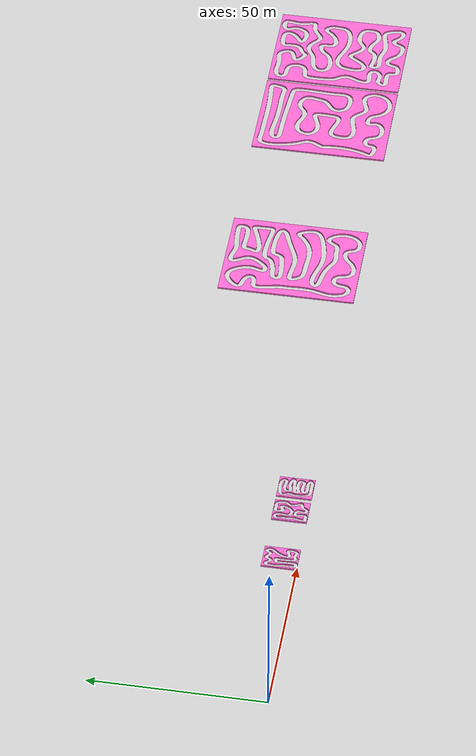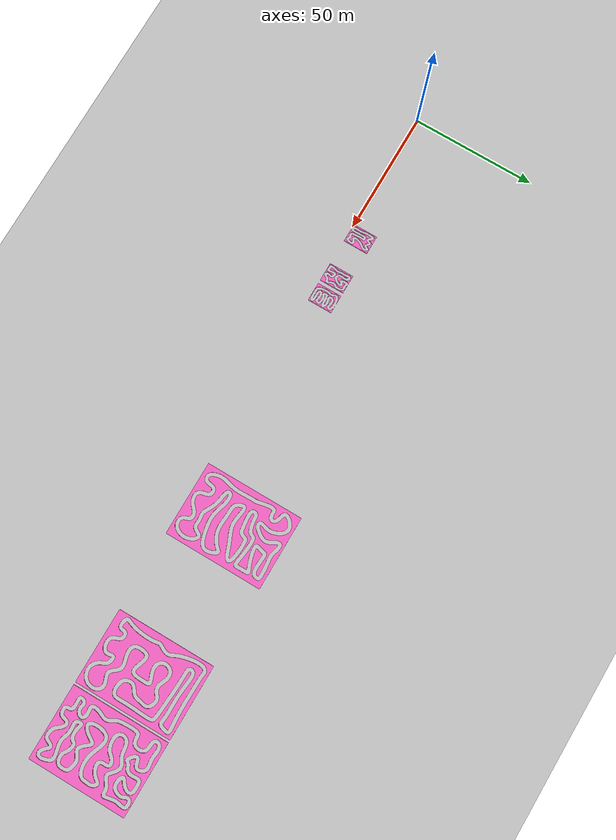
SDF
<sdf version="1.6">
 <world name="empty">
  <physics name="1ms" type="ignored">
   <max_step_size>0.001</max_step_size>
   <real_time_factor>10.0</real_time_factor>
  </physics>
  <plugin filename="gz-sim-physics-system" name="gz::sim::systems::Physics"/>
  <plugin filename="gz-sim-sensors-system" name="gz::sim::systems::Sensors">
   <render_engine>ogre2</render_engine>
  </plugin>
  <plugin filename="gz-sim-user-commands-system" name="gz::sim::systems::UserCommands"/>
  <plugin filename="gz-sim-scene-broadcaster-system" name="gz::sim::systems::SceneBroadcaster"/>
  <light type="directional" name="sun">
   <pose>0 0 10 0 0 0</pose>
   <diffuse>1 1 1 1</diffuse>
   <specular>0.5 0.5 0.5 1</specular>
   <attenuation>
    <range>1000</range>
    <constant>0.9</constant>
    <linear>0.01</linear>
    <quadratic>0.001</quadratic>
   </attenuation>
   <direction>-0.5 0.1 -0.9</direction>
  </light>
  <model name="narrow_ground_plane">
   <pose>130 0 0 0 0 0</pose>
   <static>true</static>
   <link name="link">
    <collision name="collision">
     <geometry><plane><normal>0 0 1</normal><size>140 100</size></plane></geometry>
     <surface>
      <friction>
       <ode><mu>50</mu></ode>
       <bullet><friction>1</friction><rolling_friction>0.1</rolling_friction></bullet>
      </friction>
     </surface>
    </collision>
    <visual name="visual">
     <geometry><plane><normal>0 0 1</normal><size>300 100</size></plane></geometry>
     <material>
      <ambient>0.8 0.8 0.8 1</ambient>
      <diffuse>0.8 0.8 0.8 1</diffuse>
      <specular>0.8 0.8 0.8 1</specular>
     </material>
    </visual>
   </link>
  </model>
  <model name="track_02_1m">
   <pose>49 0 0 0 0 0</pose>
   <static>true</static>
   <link name="track">
    <visual name="track_vis">
     <geometry><mesh><uri>../meshes/track_02_1m.stl</uri><scale>0.001 0.001 0.001</scale></mesh></geometry>
     <material>
      <ambient>1.0 0.4 0.8 1</ambient>
      <diffuse>1.0 0.4 0.8 1</diffuse>
      <specular>0.5 0.2 0.4 1</specular>
     </material>
    </visual>
    <collision name="track_col">
     <geometry><mesh><uri>../meshes/track_02_1m.stl</uri><scale>0.001 0.001 0.001</scale></mesh></geometry>
    </collision>
   </link>
  </model>
  <model name="track_04_1m">
   <pose>67 0 0 0 0 0</pose>
   <static>true</static>
   <link name="track">
    <visual name="track_vis">
     <geometry><mesh><uri>../meshes/track_04_1m.stl</uri><scale>0.001 0.001 0.001</scale></mesh></geometry>
     <material>
      <ambient>1.0 0.4 0.8 1</ambient>
      <diffuse>1.0 0.4 0.8 1</diffuse>
      <specular>0.5 0.2 0.4 1</specular>
     </material>
    </visual>
    <collision name="track_col">
     <geometry><mesh><uri>../meshes/track_04_1m.stl</uri><scale>0.001 0.001 0.001</scale></mesh></geometry>
    </collision>
   </link>
  </model>
  <model name="track_05_1m">
   <pose>76 0 0 0 0 0</pose>
   <static>true</static>
   <link name="track">
    <visual name="track_vis">
     <geometry><mesh><uri>../meshes/track_05_1m.stl</uri><scale>0.001 0.001 0.001</scale></mesh></geometry>
     <material>
      <ambient>1.0 0.4 0.8 1</ambient>
      <diffuse>1.0 0.4 0.8 1</diffuse>
      <specular>0.5 0.2 0.4 1</specular>
     </material>
    </visual>
    <collision name="track_col">
     <geometry><mesh><uri>../meshes/track_05_1m.stl</uri><scale>0.001 0.001 0.001</scale></mesh></geometry>
    </collision>
   </link>
  </model>
  <model name="narrow_track_03">
   <pose>156 0 0 0 0 0</pose>
   <static>true</static>
   <link name="track">
    <visual name="track_vis">
     <geometry><mesh><uri>../meshes/narrow_track_03.stl</uri><scale>0.001 0.001 0.001</scale></mesh></geometry>
     <material>
      <ambient>1.0 0.4 0.8 1</ambient>
      <diffuse>1.0 0.4 0.8 1</diffuse>
      <specular>0.5 0.2 0.4 1</specular>
     </material>
    </visual>
    <collision name="track_col">
     <geometry><mesh><uri>../meshes/narrow_track_03.stl</uri><scale>0.001 0.001 0.001</scale></mesh></geometry>
    </collision>
   </link>
  </model>
  <model name="narrow_track_05">
   <pose>218 0 0 0 0 0</pose>
   <static>true</static>
   <link name="track">
    <visual name="track_vis">
     <geometry><mesh><uri>../meshes/narrow_track_05.stl</uri><scale>0.001 0.001 0.001</scale></mesh></geometry>
     <material>
      <ambient>1.0 0.4 0.8 1</ambient>
      <diffuse>1.0 0.4 0.8 1</diffuse>
      <specular>0.5 0.2 0.4 1</specular>
     </material>
    </visual>
    <collision name="track_col">
     <geometry><mesh><uri>../meshes/narrow_track_05.stl</uri><scale>0.001 0.001 0.001</scale></mesh></geometry>
    </collision>
   </link>
  </model>
  <model name="narrow_track_06">
   <pose>249 0 0 0 0 0</pose>
   <static>true</static>
   <link name="track">
    <visual name="track_vis">
     <geometry><mesh><uri>../meshes/narrow_track_06.stl</uri><scale>0.001 0.001 0.001</scale></mesh></geometry>
     <material>
      <ambient>1.0 0.4 0.8 1</ambient>
      <diffuse>1.0 0.4 0.8 1</diffuse>
      <specular>0.5 0.2 0.4 1</specular>
     </material>
    </visual>
    <collision name="track_col">
     <geometry><mesh><uri>../meshes/narrow_track_06.stl</uri><scale>0.001 0.001 0.001</scale></mesh></geometry>
    </collision>
   </link>
  </model>
 </world>
</sdf>
